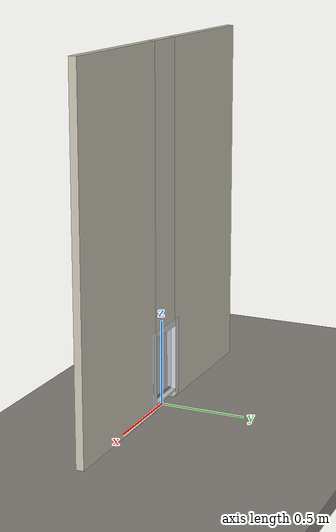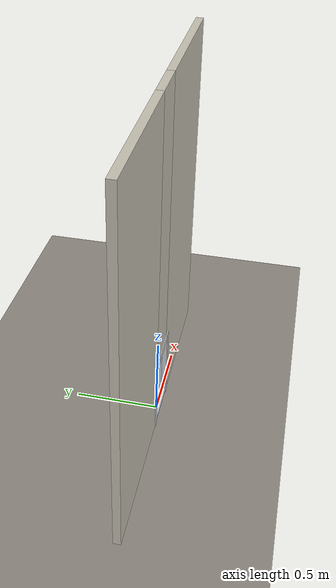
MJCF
<?xml version="1.0" ?>
<mujoco model="db0609_pet_door_full">
  <compiler angle="radian" meshdir="../../hardware" texturedir="../../textures" autolimits="true" inertiafromgeom="false"/>
  <option timestep="0.002" integrator="implicitfast" cone="elliptic" impratio="10" noslip_iterations="3">
    <flag multiccd="enable"/>
  </option>
  <size memory="16M"/>
  <default>
    <geom condim="4" solref="0.005 1" solimp="0.95 0.99 0.001"/>
    <joint solreflimit="0.005 1" solimplimit="0.95 0.99 0.001"/>
    <tendon solreflimit="0.005 1"/>
    <equality solref="0.002 1"/>
  </default>
  <visual>
    <headlight ambient="0.4 0.4 0.4" diffuse="0.7 0.7 0.7" specular="0.2 0.2 0.2"/>
    <quality shadowsize="4096"/>
    <map znear="0.01" zfar="60"/>
  </visual>
  <asset>
    <material name="mat_floor" rgba="0.55 0.53 0.5 1" specular="0.2" shininess="0.15" reflectance="0"/>
    <material name="mat_wall" rgba="0.78 0.76 0.7 1" specular="0.2" shininess="0.1" reflectance="0"/>
    <material name="mat_frame" rgba="0.8 0.81 0.83 1" specular="0.8" shininess="0.6" reflectance="0.4"/>
    <material name="mat_flap" rgba="0.85 0.9 0.95 0.45" specular="0.2" shininess="0.7" reflectance="0.1"/>
    <material name="mat_magnet" rgba="0.55 0.56 0.58 1" specular="0.8" shininess="0.55" reflectance="0.4"/>
    <texture name="skybox" type="skybox" builtin="gradient" rgb1="0.6 0.7 0.85" rgb2="0.9 0.92 0.95" width="256" height="256"/>
  </asset>
  <worldbody>
    <light name="sun" pos="1.5 -2.5 4" dir="-0.3 0.5 -0.8" directional="true" diffuse="0.8 0.8 0.8" specular="0.3 0.3 0.3" castshadow="true"/>
    <light name="fill" pos="-1.5 2.5 3" dir="0.3 -0.5 -0.7" directional="true" diffuse="0.35 0.35 0.4" castshadow="false"/>
    <camera name="robot_view" pos="0 -1.875 0.72" xyaxes="1 0 0 0 0.26963 0.962964" fovy="52"/>
    <camera name="far_view" pos="0 1.875 0.72" xyaxes="-1 0 0 0 -0.26963 0.962964" fovy="52"/>
    <camera name="iso" pos="1.425 -1.575 1.02" xyaxes="0.741536 0.670913 0 -0.242917 0.268487 0.932151" fovy="46"/>
    <camera name="detail_handle" pos="0.48 -0.8 0.525" xyaxes="0.97561 0.219512 0 -0.070934 0.315262 0.94635" fovy="38"/>
    <geom name="floor" type="box" size="6 6 0.05" pos="0 0 -0.05" material="mat_floor" group="0" contype="1" conaffinity="1" friction="0.8 0.005 0.0001" density="2400"/>
    <geom name="wall_left" type="box" size="0.435 0.022 1.05" pos="-0.565 0 1.05" material="mat_wall" group="0" contype="1" conaffinity="1" friction="0.6 0.005 0.0001" density="800"/>
    <geom name="wall_right" type="box" size="0.435 0.022 1.05" pos="0.565 0 1.05" material="mat_wall" group="0" contype="1" conaffinity="1" friction="0.6 0.005 0.0001" density="800"/>
    <geom name="wall_header" type="box" size="0.13 0.022 0.83" pos="0 0 1.27" material="mat_wall" group="0" contype="1" conaffinity="1" friction="0.6 0.005 0.0001" density="800"/>
    <geom name="pet_frame_l" type="box" size="0.02 0.028 0.235" pos="-0.15 0 0.245" material="mat_frame" group="0" contype="1" conaffinity="1" friction="0.6 0.005 0.0001" density="1200"/>
    <geom name="pet_frame_r" type="box" size="0.02 0.028 0.235" pos="0.15 0 0.245" material="mat_frame" group="0" contype="1" conaffinity="1" friction="0.6 0.005 0.0001" density="1200"/>
    <geom name="pet_frame_t" type="box" size="0.13 0.028 0.02" pos="0 0 0.46" material="mat_frame" group="0" contype="1" conaffinity="1" friction="0.6 0.005 0.0001" density="1200"/>
    <geom name="pet_sill" type="box" size="0.13 0.028 0.006" pos="0 0 0.044" material="mat_frame" group="0" contype="1" conaffinity="1" friction="0.6 0.005 0.0001" density="1200"/>
    <geom name="sill_magnet" type="box" size="0.105 0.002 0.008" pos="0 -0.005 0.06" material="mat_magnet" group="1" contype="0" conaffinity="0" density="7850"/>
    <site name="approach_point" pos="0 -1 0" quat="1 0 0 0" size="0.05" rgba="0.2 0.9 0.2 0.5" group="4"/>
    <site name="goal_point" pos="0 1 0" quat="1 0 0 0" size="0.05" rgba="0.2 0.9 0.2 0.5" group="4"/>
    <site name="door_plane_center" pos="0 0 0.245" quat="1 0 0 0" size="0.02" rgba="0.2 0.9 0.2 0.5" group="4"/>
    <body name="flap" pos="0 0 0.434">
      <inertial pos="0 0 -0.232949" mass="0.505" quat="-0.5 0.5 0.5 0.5" diaginertia="0.00235135 0.007505947 0.009855549"/>
      <joint name="flap_hinge" type="hinge" axis="1 0 0" limited="true" range="-1.308997 1.308997" damping="0.010268" frictionloss="0.032554" armature="0.02"/>
      <geom name="flap_geom" type="box" size="0.122 0.002 0.188" pos="0 0 -0.19" material="mat_flap" group="0" contype="1" conaffinity="1" friction="0.6 0.005 0.0001" density="1"/>
      <geom name="flap_magnet" type="box" size="0.105 0.003 0.008" pos="0 0 -0.37" material="mat_magnet" group="1" contype="0" conaffinity="0" density="7850"/>
    </body>
  </worldbody>
  <sensor>
    <jointpos name="flap_hinge_pos" joint="flap_hinge"/>
    <jointvel name="flap_hinge_vel" joint="flap_hinge"/>
  </sensor>
</mujoco>
